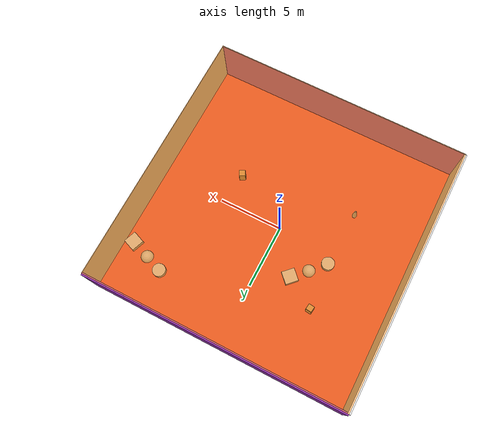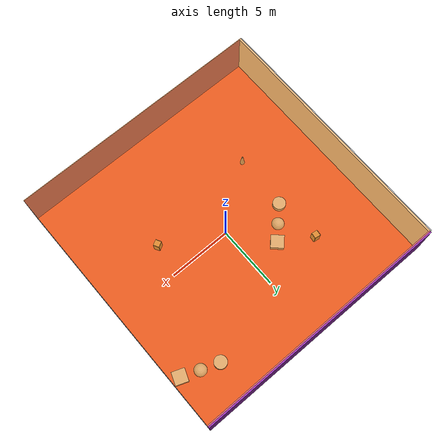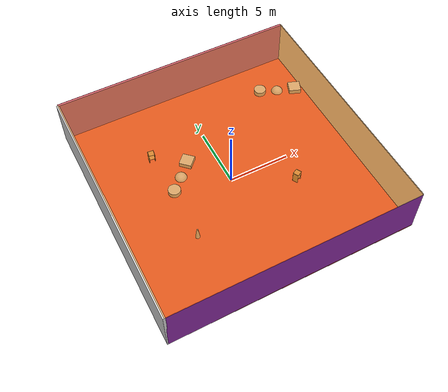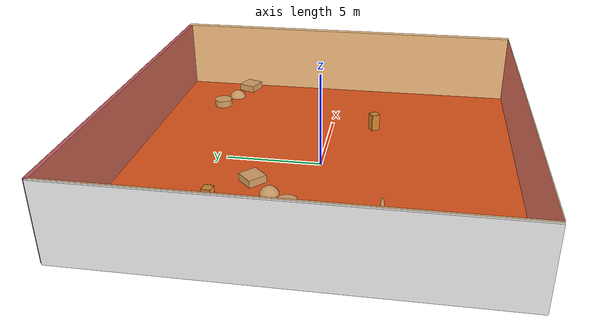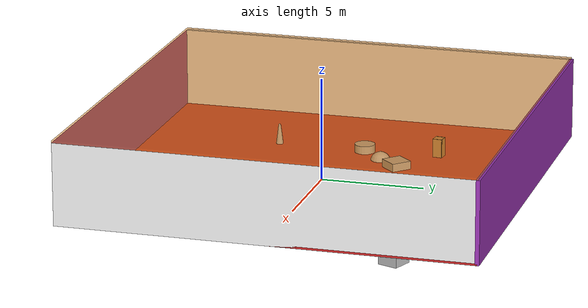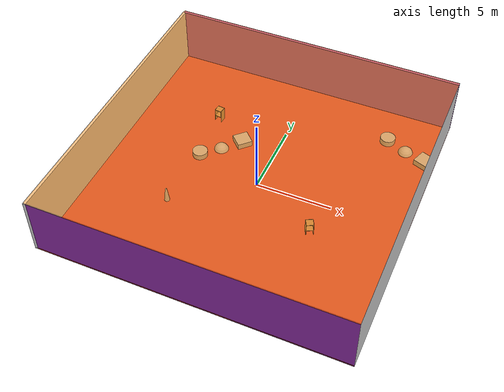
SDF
<sdf version="1.4">
 <world name="default">
  <physics type="ode">
   <max_step_size>0.001</max_step_size>
   <real_time_factor>1</real_time_factor>
   <real_time_update_rate>1000</real_time_update_rate>
   <gravity>0 0 -9.8</gravity>
  </physics>
  <scene><ambient>0.4 0.4 0.4 1</ambient><background>0.7 0.7 0.7 1</background><shadows>1</shadows></scene>
  <model name="Surrounding">
   <static>1</static>
   <link name="Ceiling">
    <collision name="Ceiling_Collision"><geometry><box><size>20 20 0.1</size></box></geometry></collision>
    <visual name="Ceiling_Visual">
     <geometry><box><size>20 20 0.1</size></box></geometry>
     <material>
      <script>
       <uri>file://media/materials/scripts/gazebo.material</uri>
       <name>Gazebo/OrangeTransparent</name>
      </script>
     </material>
    </visual>
    <pose>0 0 4.05 0 0 0</pose>
   </link>
   <link name="Wall_South">
    <collision name="Wall_South_Collision">
     <geometry><box><size>20 0 4</size></box></geometry>
     <pose>0 0 2 0 -0 0</pose>
    </collision>
    <visual name="Wall_South_Visual">
     <pose>0 0 2 0 -0 0</pose>
     <geometry><box><size>20 0 4</size></box></geometry>
     <material>
      <script><uri>file://media/materials/scripts/gazebo.material</uri><name>Gazebo/PurpleGlow</name></script>
     </material>
    </visual>
    <velocity_decay><linear>0</linear><angular>0</angular></velocity_decay>
    <pose>0 -10 0 0 -0 0</pose>
   </link>
   <link name="Wall_East">
    <collision name="Wall_21_Collision">
     <geometry><box><size>20 0 4</size></box></geometry>
     <pose>0 0 2 0 -0 0</pose>
    </collision>
    <visual name="Wall_21_Visual">
     <pose>0 0 2 0 -0 0</pose>
     <geometry><box><size>20 0 4</size></box></geometry>
     <material>
      <script><uri>file://media/materials/scripts/gazebo.material</uri><name>Gazebo/WhiteGlow</name></script>
     </material>
    </visual>
    <velocity_decay><linear>0</linear><angular>0</angular></velocity_decay>
    <pose>10 0 0 0 -0 1.5708</pose>
   </link>
   <link name="Wall_North">
    <collision name="Wall_22_Collision">
     <geometry><box><size>20 0.2 4</size></box></geometry>
     <pose>0 0 2 0 -0 0</pose>
    </collision>
    <visual name="Wall_22_Visual">
     <pose>0 0 2 0 -0 0</pose>
     <geometry><box><size>20 0.2 4</size></box></geometry>
     <material>
      <script><uri>file://media/materials/scripts/gazebo.material</uri><name>Gazebo/Purple</name></script>
     </material>
    </visual>
    <velocity_decay><linear>0</linear><angular>0</angular></velocity_decay>
    <pose>0 10 0 0 -0 0</pose>
   </link>
   <link name="Wall_West">
    <collision name="Wall_23_Collision">
     <geometry><box><size>20 0.2 4</size></box></geometry>
     <pose>0 0 2 0 -0 0</pose>
    </collision>
    <visual name="Wall_23_Visual">
     <pose>0 0 2 0 -0 0</pose>
     <geometry><box><size>20 0.2 4</size></box></geometry>
     <material>
      <script><uri>file://media/materials/scripts/gazebo.material</uri><name>Gazebo/WhiteGlow</name></script>
     </material>
    </visual>
    <velocity_decay><linear>0</linear><angular>0</angular></velocity_decay>
    <pose>-10 0 0 0 0 -1.5708</pose>
   </link>
   <link name="Ground_link">
    <collision name="collision">
     <pose>0 0 .05 0 -0 0</pose>
     <geometry><box><size>20 20 0.1</size></box></geometry>
    </collision>
    <visual name="visual">
     <pose>0 0 .05 0 -0 0</pose>
     <geometry><box><size>20 20 0.1</size></box></geometry>
     <material>
      <script><uri>file://media/materials/scripts/gazebo.material</uri><name>Gazebo/RedGlow</name></script>
     </material>
    </visual>
   </link>
   <static>1</static>
  </model>
  <spherical_coordinates>
   <surface_model>EARTH_WGS84</surface_model>
   <latitude_deg>0</latitude_deg>
   <longitude_deg>0</longitude_deg>
   <elevation>0</elevation>
   <heading_deg>0</heading_deg>
  </spherical_coordinates>
  <light name="lightball_0" type="diffuse">
   <diffuse>0.8 0.8 0.8 1</diffuse>
   <specular>0.2 0.2 0.2 1</specular>
   <attenuation>
    <range>100</range>
    <constant>0.7</constant>
    <linear>0.01</linear>
    <quadratic>0.001</quadratic>
   </attenuation>
   <direction>-0.5 0.1 -0.9</direction>
   <pose>2.5975403876 -0.42235717404 1.91828719827 0 0 0</pose>
  </light>
  <light name="lightball_1" type="diffuse">
   <diffuse>0.8 0.8 0.8 1</diffuse>
   <specular>0.2 0.2 0.2 1</specular>
   <attenuation>
    <range>100</range>
    <constant>0.7</constant>
    <linear>0.01</linear>
    <quadratic>0.001</quadratic>
   </attenuation>
   <direction>-0.5 0.1 -0.9</direction>
   <pose>6.08025667234 -0.459282163415 3.57449952238 0 0 0</pose>
  </light>
  <light name="lightball_2" type="diffuse">
   <diffuse>0.8 0.8 0.8 1</diffuse>
   <specular>0.2 0.2 0.2 1</specular>
   <attenuation>
    <range>100</range>
    <constant>0.7</constant>
    <linear>0.01</linear>
    <quadratic>0.001</quadratic>
   </attenuation>
   <direction>-0.5 0.1 -0.9</direction>
   <pose>-6.93211086011 -2.55119772003 3.39268774899 0 0 0</pose>
  </light>
  <light name="lightball_3" type="diffuse">
   <diffuse>0.8 0.8 0.8 1</diffuse>
   <specular>0.2 0.2 0.2 1</specular>
   <attenuation>
    <range>100</range>
    <constant>0.7</constant>
    <linear>0.01</linear>
    <quadratic>0.001</quadratic>
   </attenuation>
   <direction>-0.5 0.1 -0.9</direction>
   <pose>-8.43503265001 9.65708703301 0.563155763334 0 0 0</pose>
  </light>
  <light name="lightball_4" type="diffuse">
   <diffuse>0.8 0.8 0.8 1</diffuse>
   <specular>0.2 0.2 0.2 1</specular>
   <attenuation>
    <range>100</range>
    <constant>0.7</constant>
    <linear>0.01</linear>
    <quadratic>0.001</quadratic>
   </attenuation>
   <direction>-0.5 0.1 -0.9</direction>
   <pose>5.34388713271 -4.46091166524 2.40356463722 0 0 0</pose>
  </light>
  <light name="lightball_5" type="diffuse">
   <diffuse>0.8 0.8 0.8 1</diffuse>
   <specular>0.2 0.2 0.2 1</specular>
   <attenuation>
    <range>100</range>
    <constant>0.7</constant>
    <linear>0.01</linear>
    <quadratic>0.001</quadratic>
   </attenuation>
   <direction>-0.5 0.1 -0.9</direction>
   <pose>-8.7042633049 4.1664378268 2.67336283835 0 0 0</pose>
  </light>
  <light name="lightball_6" type="diffuse">
   <diffuse>0.8 0.8 0.8 1</diffuse>
   <specular>0.2 0.2 0.2 1</specular>
   <attenuation>
    <range>100</range>
    <constant>0.7</constant>
    <linear>0.01</linear>
    <quadratic>0.001</quadratic>
   </attenuation>
   <direction>-0.5 0.1 -0.9</direction>
   <pose>-9.27199046237 9.73358620542 3.75756845583 0 0 0</pose>
  </light>
  <light name="lightball_7" type="diffuse">
   <diffuse>0.8 0.8 0.8 1</diffuse>
   <specular>0.2 0.2 0.2 1</specular>
   <attenuation>
    <range>100</range>
    <constant>0.7</constant>
    <linear>0.01</linear>
    <quadratic>0.001</quadratic>
   </attenuation>
   <direction>-0.5 0.1 -0.9</direction>
   <pose>5.4161036259 -4.26631215348 1.07399255243 0 0 0</pose>
  </light>
  <include>
   <uri>model://construction_cone</uri>
   <pose>-4.64117147554 -3.49365434534 0 0 0 1.20567387148</pose>
  </include>
  <include>
   <uri>model://textured_shapes</uri>
   <pose>-3.43604234708 1.97876962998 0 0 0 2.36703706106</pose>
  </include>
  <include><uri>model://cabinet</uri><pose>-4.77046231905 4.57007821751 0 0 0 1.44646828111</pose></include>
  <include><uri>model://cabinet</uri><pose>4.49955424396 -2.41715209801 0 0 0 2.0685540445</pose></include>
  <include>
   <uri>model://textured_shapes</uri>
   <pose>7.88849304058 6.51384718638 0 0 0 1.21065579428</pose>
  </include>
 </world>
</sdf>

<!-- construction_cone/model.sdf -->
<sdf version="1.5">
  <model name="Construction Cone">
    <link name="link">
      <collision name="collision">
        <geometry>
          <mesh>
            <scale>10 10 10</scale>
            <uri>file://isr-testbed/construction_cone/meshes/construction_cone.dae</uri>
          </mesh>
        </geometry>
      </collision>
      <visual name="visual">
        <geometry>
          <mesh>
            <scale>10 10 10</scale>
            <uri>file://isr-testbed/construction_cone/meshes/construction_cone.dae</uri>
          </mesh>
        </geometry>
      </visual>
    </link>
  </model>
</sdf>

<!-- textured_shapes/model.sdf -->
<sdf version="1.6">
  <model name="textured_shapes">
    <pose>0 0 0.5 0 0 0</pose>
    <link name="box">
      <pose>0 -1.5 0 0 0 0</pose>
      <collision name="collision">
        <geometry>
          <box>
            <size>1 1 1</size>
          </box>
        </geometry>
      </collision>
      <visual name="visual">
        <geometry>
          <box>
            <size>1 1 1</size>
          </box>
        </geometry>
        <material>
          <script>
            <uri>model://../model_source/models/textured_shapes/materials/scripts</uri>
            <uri>model://../model_source/models/textured_shapes/materials/textures</uri>
            <name>TexturedShape/Squares</name>
          </script>
        </material>
      </visual>
    </link>
    <link name="sphere">
      <collision name="collision">
        <geometry>
          <sphere>
            <radius>0.5</radius>
          </sphere>
        </geometry>
      </collision>
      <visual name="visual">
        <geometry>
          <sphere>
            <radius>0.5</radius>
          </sphere>
        </geometry>
        <material>
          <script>
            <uri>model://../model_source/models/textured_shapes/materials/scripts</uri>
            <uri>model://../model_source/models/textured_shapes/materials/textures</uri>
            <name>TexturedShape/Squares</name>
          </script>
        </material>
      </visual>
    </link>
    <link name="cylinder">
      <pose>0 1.5 0 0 0 0</pose>
      <collision name="collision">
        <geometry>
          <cylinder>
            <radius>0.5</radius>
            <length>1</length>
          </cylinder>
        </geometry>
      </collision>
      <visual name="visual">
        <geometry>
          <cylinder>
            <radius>0.5</radius>
            <length>1</length>
          </cylinder>
        </geometry>
        <material>
          <script>
            <uri>model://../model_source/models/textured_shapes/materials/scripts</uri>
            <uri>model://../model_source/models/textured_shapes/materials/textures</uri>
            <name>TexturedShape/Squares</name>
          </script>
        </material>
      </visual>
    </link>
  </model>
</sdf>

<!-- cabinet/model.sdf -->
<sdf version="1.5">
  <model name="cabinet">
    <static>true</static>
    <link name="cabinet_bottom_plate">
      <inertial>
        <pose>0 0 -1 0 0 0</pose>
        <inertia>
          <ixx>2.050000</ixx>
          <ixy>0</ixy>
          <ixz>0</ixz>
          <iyy>2.050000</iyy>
          <iyz>0</iyz>
          <izz>2.050000</izz>
        </inertia>
        <mass>25.000000</mass>
      </inertial>
      <collision name="cabinet_bottom_plate_geom">
        <pose>0 0 0.010000 0 0 0</pose>
        <geometry>
          <box>
            <size>0.450000 0.450000 0.020000</size>
          </box>
        </geometry>
      </collision>
      <visual name="cabinet_bottom_plate_geom_visual">
        <pose>0 0 0.010000 0 0 0</pose>
        <geometry>
          <box>
            <size>0.450000 0.450000 0.020000</size>
          </box>
        </geometry>
        <material>
          <script>
            <uri>model://media/materials/scripts/gazebo.material</uri>
            <name>Gazebo/Wood</name>
          </script>
        </material>
      </visual>
      <collision name="cabinet_bottom_plate_geom_cabinet_back_plate">
        <pose>0.235000 0 0.510000 0 0 0</pose>
        <geometry>
          <box>
            <size>0.020000 0.450000 1.020000</size>
          </box>
        </geometry>
      </collision>
      <visual name="cabinet_bottom_plate_geom_cabinet_back_plate_visual">
        <pose>0.235000 0 0.510000 0 0 0</pose>
        <geometry>
          <box>
            <size>0.020000 0.450000 1.020000</size>
          </box>
        </geometry>
        <material>
          <script>
            <uri>model://media/materials/scripts/gazebo.material</uri>
            <name>Gazebo/Wood</name>
          </script>
        </material>
      </visual>
      <collision name="cabinet_bottom_plate_geom_cabinet_left_plate">
        <pose>0 0.235000 0.510000 0 0 0</pose>
        <geometry>
          <box>
            <size>0.450000 0.020000 1.020000</size>
          </box>
        </geometry>
      </collision>
      <visual name="cabinet_bottom_plate_geom_cabinet_left_plate_visual">
        <pose>0 0.235000 0.510000 0 0 0</pose>
        <geometry>
          <box>
            <size>0.450000 0.020000 1.020000</size>
          </box>
        </geometry>
        <material>
          <script>
            <uri>model://media/materials/scripts/gazebo.material</uri>
            <name>Gazebo/Wood</name>
          </script>
        </material>
      </visual>
      <collision name="cabinet_bottom_plate_geom_cabinet_middle_plate">
        <pose>0 0 0.510000 0 0 0</pose>
        <geometry>
          <box>
            <size>0.450000 0.450000 0.020000</size>
          </box>
        </geometry>
      </collision>
      <visual name="cabinet_bottom_plate_geom_cabinet_middle_plate_visual">
        <pose>0 0 0.510000 0 0 0</pose>
        <geometry>
          <box>
            <size>0.450000 0.450000 0.020000</size>
          </box>
        </geometry>
        <material>
          <script>
            <uri>model://media/materials/scripts/gazebo.material</uri>
            <name>Gazebo/Wood</name>
          </script>
        </material>
      </visual>
      <collision name="cabinet_bottom_plate_geom_cabinet_right_plate">
        <pose>0 -0.235000 0.510000 0 0 0</pose>
        <geometry>
          <box>
            <size>0.450000 0.020000 1.020000</size>
          </box>
        </geometry>
      </collision>
      <visual name="cabinet_bottom_plate_geom_cabinet_right_plate_visual">
        <pose>0 -0.235000 0.510000 0 0 0</pose>
        <geometry>
          <box>
            <size>0.450000 0.020000 1.020000</size>
          </box>
        </geometry>
        <material>
          <script>
            <uri>model://media/materials/scripts/gazebo.material</uri>
            <name>Gazebo/Wood</name>
          </script>
        </material>
      </visual>
      <collision name="cabinet_bottom_plate_geom_cabinet_top_plate">
        <pose>0 0 1.010000 0 0 0</pose>
        <geometry>
          <box>
            <size>0.450000 0.450000 0.020000</size>
          </box>
        </geometry>
      </collision>
      <visual name="cabinet_bottom_plate_geom_cabinet_top_plate_visual">
        <pose>0 0 1.010000 0 0 0</pose>
        <geometry>
          <box>
            <size>0.450000 0.450000 0.020000</size>
          </box>
        </geometry>
        <material>
          <script>
            <uri>model://media/materials/scripts/gazebo.material</uri>
            <name>Gazebo/Wood</name>
          </script>
        </material>
      </visual>
    </link>
  </model>
</sdf>
